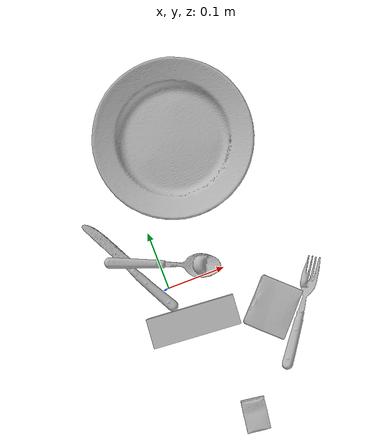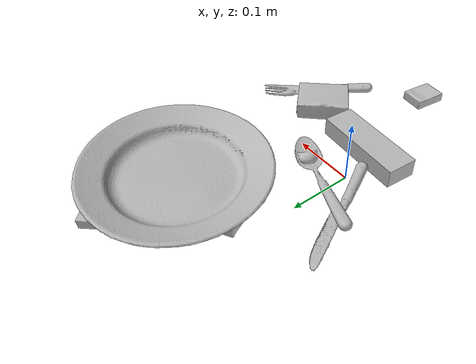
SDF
<sdf version="1.4">
  <world name="default">
    <light name="light1" type="point">
      <pose>0 0 1 0 0 0</pose>
      <diffuse>3 3 3 1</diffuse>
      <specular>3 3 3 1</specular>
    </light>
    <light name="light2" type="point">
      <pose>0 0.5 2 0 0 0</pose>
      <diffuse>1 1 1 1</diffuse>
      <specular>1 1 1 1</specular>
    </light>
    <light name="light3" type="point">
      <pose>0 0.5 2 0 0 0</pose>
      <diffuse>3 3 3 1</diffuse>
      <specular>3 3 3 1</specular>
    </light>
    <scene>
      <ambient>0.7 0.7 0.7</ambient>
    </scene>
    <model name="box11">
      <link name="link_box11">
        <collision name="default">
          <geometry>
            <mesh>
              <uri>model://pudding_box/collision_meshes/collision.obj</uri>
              <scale>0.5 0.5 0.5</scale>
            </mesh>
          </geometry>
          <surface>
            <friction>
              <ode>
                <mu>0.5</mu>
                <mu2>0.5</mu2>
              </ode>
            </friction>
          <contact>
        <ode>
            <max_vel>0</max_vel>
            <min_depth>0.0001</min_depth>
            <kp>1e8</kp>
        </ode>
    </contact></surface>
        </collision>
        <visual name="default">
          <geometry>
            <mesh>
              <uri>model://pudding_box/visual_meshes/visual.dae</uri>
              <scale>0.5 0.5 0.5</scale>
            </mesh>
          </geometry>
        </visual>
        <inertial>
          <mass>0.03786866366863251</mass>
          <pose>0.00024474109522998333 0.00040339428232982755 -0.0002594413817860186 0.005213102272185547 -0.006603797326323335 0.020079825161634604</pose>
          <inertia>
            <ixx>1.0702144e-05</ixx>
            <iyy>7.2004777e-06</iyy>
            <izz>1.580451e-05</izz>
            <ixy>0</ixy>
            <ixz>0</ixz>
            <iyz>0</iyz>
          </inertia>
        </inertial>
      </link>
      <pose>0.15519902110099792 0.3195178210735321 0.00986290443688631 0.02234818998271429 -0.011392020807224939 -2.3309111374864955</pose>
    </model>
    <model name="box12">
      <link name="link_box12">
        <collision name="default">
          <geometry>
            <mesh>
              <uri>model://gelatin_box/collision_meshes/collision.obj</uri>
              <scale>1.0 1.0 1.0</scale>
            </mesh>
          </geometry>
          <surface>
            <friction>
              <ode>
                <mu>0.5</mu>
                <mu2>0.5</mu2>
              </ode>
            </friction>
          <contact>
        <ode>
            <max_vel>0</max_vel>
            <min_depth>0.0001</min_depth>
            <kp>1e8</kp>
        </ode>
    </contact></surface>
        </collision>
        <visual name="default">
          <geometry>
            <mesh>
              <uri>model://gelatin_box/visual_meshes/visual.dae</uri>
              <scale>1.0 1.0 1.0</scale>
            </mesh>
          </geometry>
        </visual>
        <inertial>
          <mass>0.12588495016098022</mass>
          <pose>0.0004319618456065655 0.00011156871914863586 -0.0003640321083366871 -0.0010503723379331838 -0.004755819617810625 0.016440561335826234</pose>
          <inertia>
            <ixx>8.886451e-05</ixx>
            <iyy>6.3475454e-05</iyy>
            <izz>0.00013527159</izz>
            <ixy>0</ixy>
            <ixz>0</ixz>
            <iyz>0</iyz>
          </inertia>
        </inertial>
      </link>
      <pose>0.15313132107257843 -0.09187065809965134 0.015168316662311554 0.005595700975443485 -0.007301960845888102 2.373912592912185</pose>
    </model>
    <model name="box13">
      <link name="link_box13">
        <collision name="default">
          <geometry>
            <mesh>
              <uri>model://rubiks_cube/collision_meshes/collision.obj</uri>
              <scale>1.0 1.0 1.0</scale>
            </mesh>
          </geometry>
          <surface>
            <friction>
              <ode>
                <mu>0.5</mu>
                <mu2>0.5</mu2>
              </ode>
            </friction>
          <contact>
        <ode>
            <max_vel>0</max_vel>
            <min_depth>0.0001</min_depth>
            <kp>1e8</kp>
        </ode>
    </contact></surface>
        </collision>
        <visual name="default">
          <geometry>
            <mesh>
              <uri>model://rubiks_cube/visual_meshes/visual.dae</uri>
              <scale>1.0 1.0 1.0</scale>
            </mesh>
          </geometry>
        </visual>
        <inertial>
          <mass>0.24923686683177948</mass>
          <pose>2.6721039830590598e-05 5.256966323941015e-05 -7.264316082000732e-06 -0.05467307197132049 -0.09814178001312306 -0.03445579173896148</pose>
          <inertia>
            <ixx>0.00013772011</ixx>
            <iyy>0.00013707785</iyy>
            <izz>0.00013886133</izz>
            <ixy>0</ixy>
            <ixz>0</ixz>
            <iyz>0</iyz>
          </inertia>
        </inertial>
      </link>
      <pose>0.11933345347642899 0.23741941154003143 0.028678685426712036 -3.5017584018555346e-05 4.682472957512351e-06 -2.8462085633249226</pose>
    </model>
    <model name="box21">
      <link name="link_box21">
        <collision name="default">
          <geometry>
            <mesh>
              <uri>model://cracker_box/collision_meshes/collision.obj</uri>
              <scale>0.25 0.25 0.25</scale>
            </mesh>
          </geometry>
          <surface>
            <friction>
              <ode>
                <mu>0.5</mu>
                <mu2>0.5</mu2>
              </ode>
            </friction>
          <contact>
        <ode>
            <max_vel>0</max_vel>
            <min_depth>0.0001</min_depth>
            <kp>1e8</kp>
        </ode>
    </contact></surface>
        </collision>
        <visual name="default">
          <geometry>
            <mesh>
              <uri>model://cracker_box/visual_meshes/visual.dae</uri>
              <scale>0.25 0.25 0.25</scale>
            </mesh>
          </geometry>
        </visual>
        <inertial>
          <mass>0.030397580936551094</mass>
          <pose>0.00023660376609768718 6.358562677633017e-05 -0.0004257384280208498 -0.0003162076301819785 -0.011106490531717715 0.002546795235004545</pose>
          <inertia>
            <ixx>4.8323677e-06</ixx>
            <iyy>7.979188e-06</iyy>
            <izz>1.1387034e-05</izz>
            <ixy>0</ixy>
            <ixz>0</ixz>
            <iyz>0</iyz>
          </inertia>
        </inertial>
      </link>
      <pose>0.060143064707517624 -0.24952435493469238 0.00909603014588356 -0.014050443710396685 -0.005016707356175498 -1.7221549062583215</pose>
    </model>
    <model name="box22">
      <link name="link_box22">
        <collision name="default">
          <geometry>
            <mesh>
              <uri>model://jenga/collision_meshes/collision.obj</uri>
              <scale>1.0 1.0 1.0</scale>
            </mesh>
          </geometry>
          <surface>
            <friction>
              <ode>
                <mu>0.5</mu>
                <mu2>0.5</mu2>
              </ode>
            </friction>
          <contact>
        <ode>
            <max_vel>0</max_vel>
            <min_depth>0.0001</min_depth>
            <kp>1e8</kp>
        </ode>
    </contact></surface>
        </collision>
        <visual name="default">
          <geometry>
            <mesh>
              <uri>model://jenga/visual_meshes/visual.dae</uri>
              <scale>1.0 1.0 1.0</scale>
            </mesh>
          </geometry>
        </visual>
        <inertial>
          <mass>0.22754427790641785</mass>
          <pose>-2.502855807051674e-07 -0.00010250010382151231 -4.0923401684267446e-05 0.0 -7.34215461761844e-07 0.0</pose>
          <inertia>
            <ixx>6.2967025e-05</ixx>
            <iyy>0.00042666285</iyy>
            <izz>0.00045549884</izz>
            <ixy>0</ixy>
            <ixz>0</ixz>
            <iyz>0</iyz>
          </inertia>
        </inertial>
      </link>
      <pose>0.020506160333752632 -0.06574231386184692 0.015000002458691597 -2.8619605873579467e-08 -3.5155193780745196e-09 3.055919057566516</pose>
    </model>
    <model name="box23">
      <link name="link_box23">
        <collision name="default">
          <geometry>
            <mesh>
              <uri>model://sugar_box/collision_meshes/collision.obj</uri>
              <scale>0.5 0.5 0.5</scale>
            </mesh>
          </geometry>
          <surface>
            <friction>
              <ode>
                <mu>0.5</mu>
                <mu2>0.5</mu2>
              </ode>
            </friction>
          <contact>
        <ode>
            <max_vel>0</max_vel>
            <min_depth>0.0001</min_depth>
            <kp>1e8</kp>
        </ode>
    </contact></surface>
        </collision>
        <visual name="default">
          <geometry>
            <mesh>
              <uri>model://sugar_box/visual_meshes/visual.dae</uri>
              <scale>0.5 0.5 0.5</scale>
            </mesh>
          </geometry>
        </visual>
        <inertial>
          <mass>0.07313712686300278</mass>
          <pose>0.0005171863595023751 1.924554817378521e-05 -0.00018182402709499002 -0.0004046264167799433 0.0010506636386831275 0.0026153785560066108</pose>
          <inertia>
            <ixx>1.5234412e-05</ixx>
            <iyy>4.924075e-05</iyy>
            <izz>5.894705e-05</izz>
            <ixy>0</ixy>
            <ixz>0</ixz>
            <iyz>0</iyz>
          </inertia>
        </inertial>
      </link>
      <pose>0.04649346321821213 0.16994161903858185 0.011399298906326294 0.000775516712169888 -0.0234326028039694 2.0286507651052457</pose>
    </model>
    <model name="plate1">
      <link name="link_plate1">
        <collision name="default">
          <geometry>
            <mesh>
              <uri>model://plate/collision_meshes/collision.obj</uri>
              <scale>1.0 1.0 1.0</scale>
            </mesh>
          </geometry>
          <surface>
            <friction>
              <ode>
                <mu>0.5</mu>
                <mu2>0.5</mu2>
              </ode>
            </friction>
          <contact>
        <ode>
            <max_vel>0</max_vel>
            <min_depth>0.0001</min_depth>
            <kp>1e8</kp>
        </ode>
    </contact></surface>
        </collision>
        <visual name="default">
          <geometry>
            <mesh>
              <uri>model://plate/visual_meshes/visual.dae</uri>
              <scale>1.0 1.0 1.0</scale>
            </mesh>
          </geometry>
        </visual>
        <inertial>
          <mass>0.2069685012102127</mass>
          <pose>-0.0006044612964615226 0.0002782598603516817 -0.0010561986127868295 0.0022188143427174073 -0.003225461822968263 0.4526007532235607</pose>
          <inertia>
            <ixx>0.0009682027</ixx>
            <iyy>0.0009589421</iyy>
            <izz>0.0018936595</izz>
            <ixy>0</ixy>
            <ixz>0</ixz>
            <iyz>0</iyz>
          </inertia>
        </inertial>
      </link>
      <pose>0.09876386821269989 0.22161544859409332 0.06960612535476685 0.003558137054543535 0.04657782820457541 -2.6150185383039757</pose>
    </model>
    <model name="silverware1">
      <link name="link_silverware1">
        <collision name="default">
          <geometry>
            <mesh>
              <uri>model://knife/collision_meshes/collision.obj</uri>
              <scale>1.0 1.0 1.0</scale>
            </mesh>
          </geometry>
          <surface>
            <friction>
              <ode>
                <mu>0.5</mu>
                <mu2>0.5</mu2>
              </ode>
            </friction>
          <contact>
        <ode>
            <max_vel>0</max_vel>
            <min_depth>0.0001</min_depth>
            <kp>1e8</kp>
        </ode>
    </contact></surface>
        </collision>
        <visual name="default">
          <geometry>
            <mesh>
              <uri>model://knife/visual_meshes/visual.dae</uri>
              <scale>1.0 1.0 1.0</scale>
            </mesh>
          </geometry>
        </visual>
        <inertial>
          <mass>0.01404397189617157</mass>
          <pose>-0.02378525771200657 0.0015275126788765192 5.0620223191799596e-05 0.07306830572090188 0.017248424252748085 -0.00740981553779352</pose>
          <inertia>
            <ixx>3.9862488e-07</ixx>
            <iyy>5.3954667e-05</iyy>
            <izz>5.408303e-05</izz>
            <ixy>0</ixy>
            <ixz>0</ixz>
            <iyz>0</iyz>
          </inertia>
        </inertial>
      </link>
      <pose>-0.04687991365790367 0.058607444167137146 0.00793683435767889 0.03305368711629532 -0.014229361346510407 2.0350782206615117</pose>
    </model>
    <model name="silverware2">
      <link name="link_silverware2">
        <collision name="default">
          <geometry>
            <mesh>
              <uri>model://fork/collision_meshes/collision.obj</uri>
              <scale>1.0 1.0 1.0</scale>
            </mesh>
          </geometry>
          <surface>
            <friction>
              <ode>
                <mu>0.5</mu>
                <mu2>0.5</mu2>
              </ode>
            </friction>
          <contact>
        <ode>
            <max_vel>0</max_vel>
            <min_depth>0.0001</min_depth>
            <kp>1e8</kp>
        </ode>
    </contact></surface>
        </collision>
        <visual name="default">
          <geometry>
            <mesh>
              <uri>model://fork/visual_meshes/visual.dae</uri>
              <scale>1.0 1.0 1.0</scale>
            </mesh>
          </geometry>
        </visual>
        <inertial>
          <mass>0.012992284260690212</mass>
          <pose>-0.029570037499070168 0.0004658822435885668 0.00032188609475269914 -0.013552170713958372 -0.010977837352032947 0.014453895109592321</pose>
          <inertia>
            <ixx>4.5545306e-07</ixx>
            <iyy>3.3919117e-05</iyy>
            <izz>3.4122822e-05</izz>
            <ixy>0</ixy>
            <ixz>0</ixz>
            <iyz>0</iyz>
          </inertia>
        </inertial>
      </link>
      <pose>0.19394196569919586 -0.1189008429646492 0.005725669674575329 -0.18450688300940227 0.024590337108371725 0.9344391411914345</pose>
    </model>
    <model name="silverware3">
      <link name="link_silverware3">
        <collision name="default">
          <geometry>
            <mesh>
              <uri>model://spoon/collision_meshes/collision.obj</uri>
              <scale>1.0 1.0 1.0</scale>
            </mesh>
          </geometry>
          <surface>
            <friction>
              <ode>
                <mu>0.5</mu>
                <mu2>0.5</mu2>
              </ode>
            </friction>
          <contact>
        <ode>
            <max_vel>0</max_vel>
            <min_depth>0.0001</min_depth>
            <kp>1e8</kp>
        </ode>
    </contact></surface>
        </collision>
        <visual name="default">
          <geometry>
            <mesh>
              <uri>model://spoon/visual_meshes/visual.dae</uri>
              <scale>1.0 1.0 1.0</scale>
            </mesh>
          </geometry>
        </visual>
        <inertial>
          <mass>0.01562128309160471</mass>
          <pose>-0.0055263228714466095 -0.0016034174477681518 -0.0007271653157658875 0.03521671072610287 -0.03906584128735088 0.006150609582760137</pose>
          <inertia>
            <ixx>8.688809e-07</ixx>
            <iyy>5.9438455e-05</iyy>
            <izz>5.986695e-05</izz>
            <ixy>0</ixy>
            <ixz>0</ixz>
            <iyz>0</iyz>
          </inertia>
        </inertial>
      </link>
      <pose>0.007747313007712364 0.043258704245090485 0.01254428829997778 -0.045470591762391 0.0981344556406383 -0.402023162938555</pose>
    </model>
  <physics type="ode">
      <max_contacts>50</max_contacts>
      <ode>
        <solver>
          <type>quick</type>
          <iters>75</iters>
        </solver>
        <constraints>
          <contact_max_correcting_vel>0</contact_max_correcting_vel>
          <contact_surface_layer>0</contact_surface_layer>
        </constraints>
      </ode>
    </physics></world>
</sdf>
